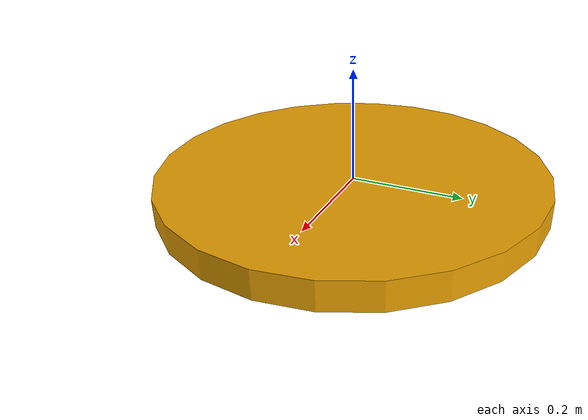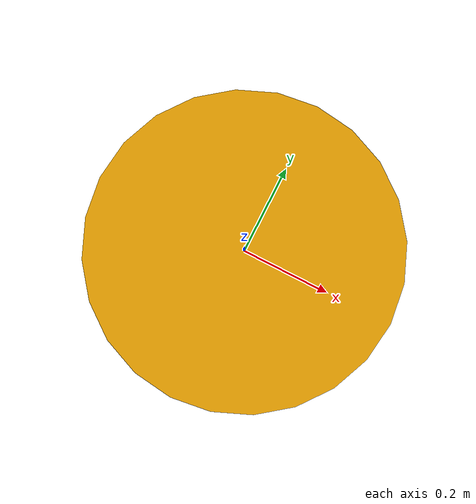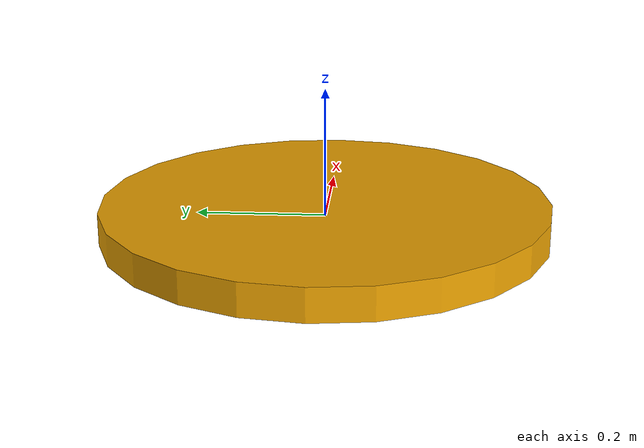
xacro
<?xml version='1.0'?>

<robot name="uni050" xmlns:xacro="http://www.ros.org/wiki/xacro">

  <xacro:property name="PI" value="3.1415926535897931"/>

  <xacro:property name="odom_update" value="100"/>

  <xacro:property name="base_linkHeight" value="0.05"/>
  <xacro:property name="base_linkLength" value="0.512"/>
  <xacro:property name="base_linkWidth" value="0.423"/>
  <xacro:property name="base_linkMass" value="10"/>
  <xacro:property name="base_linkRadius" value="0.347"/>

  <!-- Laser -->
  <xacro:property name="laseroriginX" value="0.238"/>
  <xacro:property name="laseroriginY" value="0.0"/>
  <xacro:property name="laseroriginZ" value="0.172"/>
  <xacro:property name="laseroriginRx" value="0"/>
  <xacro:property name="laseroriginRy" value="0"/>
  <xacro:property name="laseroriginRz" value="0"/>
  <xacro:property name="laserLength" value="0.061"/>
  <xacro:property name="laserWidth" value="0.061"/>
  <xacro:property name="laserHeight" value="0.086"/>
  <xacro:property name="laserMass" value="0.25"/>
  <!-- 2.09 radian = 119.74 degree, 2.01 radian = 115.165 -->
  <xacro:property name="min_angle" value="-2.01"/>
  <xacro:property name="max_angle" value="2.01"/>
  <xacro:property name="min_range" value="0.05"/>
  <xacro:property name="max_range" value="25.0"/>
  <xacro:property name="laser_angle_resolution" value="0.33"/>
  <xacro:property name="laser_update_rate" value="15"/>

  <!-- IMU(BN055)-->
  <xacro:property name="Internal_IMUoriginX" value="0.079"/>
  <xacro:property name="Internal_IMUoriginY" value="0.0"/>
  <xacro:property name="Internal_IMUoriginZ" value="0.265"/>
  <xacro:property name="Internal_IMUoriginRx" value="0"/>
  <xacro:property name="Internal_IMUoriginRy" value="0"/>
  <xacro:property name="Internal_IMUoriginRz" value="0"/>
  <xacro:property name="Internal_IMULength" value="0.015"/>
  <xacro:property name="Internal_IMUWidth" value="0.017"/>
  <xacro:property name="Internal_IMUHeight" value="0.01"/>
  <xacro:property name="Internal_IMUMass" value="0.0005"/>
  <xacro:property name="Internal_IMU_update_rate" value="100"/>

  <!-- front astra camera -->
  <xacro:property name="front_astra_cameraoriginX" value="0.246"/>
  <xacro:property name="front_astra_cameraoriginY" value="-0.02"/>
  <xacro:property name="front_astra_cameraoriginZ" value="0.292"/>
  <xacro:property name="front_astra_cameraoriginRx" value="0"/>
  <xacro:property name="front_astra_cameraoriginRy" value="0"/>
  <xacro:property name="front_astra_cameraoriginRz" value="0"/>
  <xacro:property name="front_astra_cameraMass" value="0.1"/>

  <link name='base_link'>
    <visual name="base_link_visual">
      <origin xyz="0 0 0" rpy="0 0 0"/>
      <geometry>
        <cylinder radius="${base_linkRadius}" length="${base_linkHeight}"/>
      </geometry>
    </visual>
  </link>

  <!-- Laser -->
  <link name="front_laser"> </link>
  <joint name="laser_joint" type="fixed">
    <axis xyz="0 1 0" />
    <origin xyz="${laseroriginX} ${laseroriginY} ${laseroriginZ-0.1}" rpy="${laseroriginRx} ${laseroriginRy} ${laseroriginRz}"/>
    <child link="front_laser"/>
    <parent link="base_link"/>
  </joint>

  <!-- IMU(BN055)-->
  <link name="internal_imu_link"> </link>
  <joint name="internal_imu_joint" type="fixed">
    <axis xyz="0 0 1" />
    <origin xyz="${Internal_IMUoriginX} ${Internal_IMUoriginY} ${Internal_IMUoriginZ}" rpy="${Internal_IMUoriginRx} ${Internal_IMUoriginRy} ${Internal_IMUoriginRz}"/>
    <child link="internal_imu_link"/>
    <parent link="base_link"/>
  </joint>

</robot>
